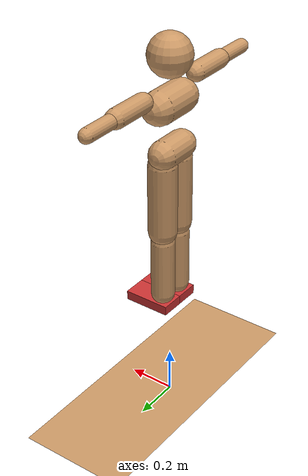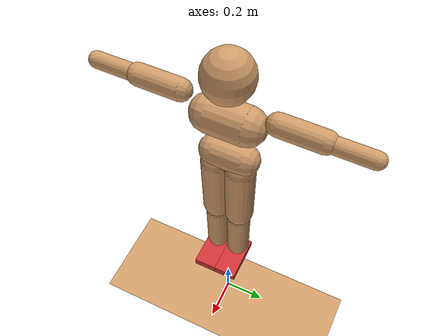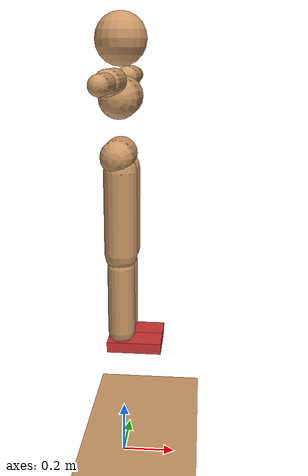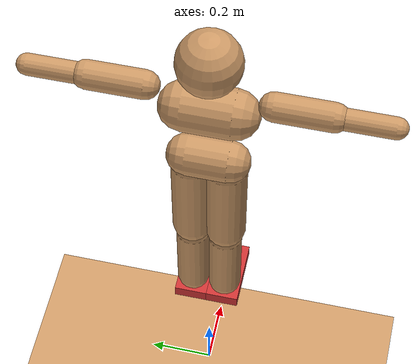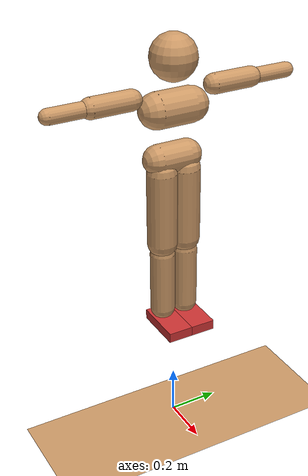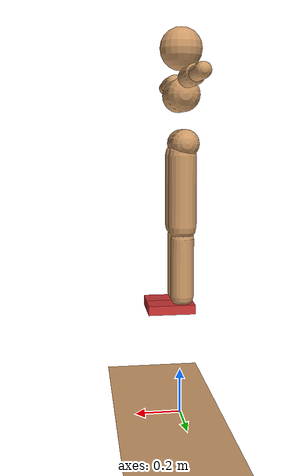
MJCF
<!--
Quark Humanoid v1: A Biomechanically-Inspired Model

This model is a simplified representation of the human body, designed for
learning locomotion and basic interaction in a MuJoCo simulation.
-->
<mujoco model="humanoid_v1">
  <compiler angle="degree" coordinate="local" inertiafromgeom="true"/>

  <option integrator="RK4" timestep="0.01"/>
  <size nconmax="2000" njmax="5000" />

  <default>
    <joint armature="1" damping="1" limited="true"/>
    <geom conaffinity="0" condim="3" density="1000" friction="1 0.5 0.5" margin="0.001" rgba="0.8 0.6 0.4 1"/>
  </default>

  <asset>
    <texture type="skybox" builtin="gradient" rgb1="0.4 0.6 0.8" rgb2="0 0 0" width="32" height="32"/>
    <texture name="texplane" type="2d" builtin="checker" rgb1=".2 .3 .4" rgb2=".1 0.15 0.2" width="512" height="512"/>
    <material name="MatPlane" reflectance="0.5" texture="texplane" texrepeat="1 1" texuniform="true"/>
  </asset>

  <worldbody>
    <!-- Arena Floor -->
    <geom name="floor" pos="0 0 0" size="5 5 0.1" type="plane" conaffinity="1" condim="3" material="MatPlane"/>
    <light diffuse=".5 .5 .5" pos="0 0 5" dir="0 0 -1"/>

    <!-- Humanoid Root -->
    <body name="torso" pos="0 0 1.4">
      <joint type="free" limited="false"/>
      <geom name="torso_geom" type="capsule" fromto="0 -0.07 0 0 0.07 0" size="0.07" />
      <geom name="waist_geom" type="capsule" fromto="-0.01 -0.06 -0.2 -0.01 0.06 -0.2" size="0.06" />

      <!-- Head -->
      <body name="head" pos="0 0 0.19">
        <geom name="head_geom" type="sphere" size="0.09" />
        <joint name="neck_y" type="hinge" pos="0 0 0.04" axis="0 1 0" range="-45 45"/>
        <joint name="neck_x" type="hinge" pos="0 0 0.04" axis="1 0 0" range="-45 45"/>
      </body>

      <!-- Right Arm -->
      <body name="right_upper_arm" pos="0 -0.17 0.06">
        <joint name="right_shoulder_x" type="hinge" pos="0 0 0" axis="1 0 0" range="-85 60"/>
        <joint name="right_shoulder_y" type="hinge" pos="0 0 0" axis="0 1 0" range="-85 60"/>
        <geom name="ru_arm_geom" type="capsule" fromto="0 0 0 0 -0.16 0" size="0.04" />
        <body name="right_lower_arm" pos="0 -0.18 0">
          <joint name="right_elbow" type="hinge" pos="0 0.02 0" axis="0 1 0" range="-120 0"/>
          <geom name="rl_arm_geom" type="capsule" fromto="0 0 0 0 -0.14 0" size="0.03" />
        </body>
      </body>

      <!-- Left Arm -->
      <body name="left_upper_arm" pos="0 0.17 0.06">
        <joint name="left_shoulder_x" type="hinge" pos="0 0 0" axis="1 0 0" range="-60 85"/>
        <joint name="left_shoulder_y" type="hinge" pos="0 0 0" axis="0 1 0" range="-60 85"/>
        <geom name="lu_arm_geom" type="capsule" fromto="0 0 0 0 0.16 0" size="0.04" />
        <body name="left_lower_arm" pos="0 0.18 0">
          <joint name="left_elbow" type="hinge" pos="0 -0.02 0" axis="0 1 0" range="-120 0"/>
          <geom name="ll_arm_geom" type="capsule" fromto="0 0 0 0 0.14 0" size="0.03" />
        </body>
      </body>

      <!-- Right Leg -->
      <body name="right_thigh" pos="0 -0.05 -0.25">
        <joint name="right_hip_x" type="hinge" pos="0 0 0" axis="1 0 0" range="-80 20"/>
        <joint name="right_hip_y" type="hinge" pos="0 0 0" axis="0 1 0" range="-45 45"/>
        <geom name="r_thigh_geom" type="capsule" fromto="0 0 0 0 0 -0.3" size="0.06" />
        <body name="right_shin" pos="0 0 -0.35">
          <joint name="right_knee" type="hinge" pos="0 0 0.02" axis="0 -1 0" range="0 150"/>
          <geom name="r_shin_geom" type="capsule" fromto="0 0 0 0 0 -0.25" size="0.05" />
          <!-- Right Foot -->
          <body name="right_foot" pos="0 0 -0.275">
            <joint name="right_ankle_y" type="hinge" pos="0 0 0.025" axis="0 1 0" range="-45 45"/>
            <joint name="right_ankle_x" type="hinge" pos="0 0 0.025" axis="1 0 0" range="-30 30"/>
            <geom name="r_foot_geom" type="box" pos="0.05 0 -0.025" size="0.1 0.05 0.02" rgba="0.8 0.2 0.2 1"/>
          </body>
        </body>
      </body>

      <!-- Left Leg -->
      <body name="left_thigh" pos="0 0.05 -0.25">
        <joint name="left_hip_x" type="hinge" pos="0 0 0" axis="1 0 0" range="-80 20"/>
        <joint name="left_hip_y" type="hinge" pos="0 0 0" axis="0 1 0" range="-45 45"/>
        <geom name="l_thigh_geom" type="capsule" fromto="0 0 0 0 0 -0.3" size="0.06" />
        <body name="left_shin" pos="0 0 -0.35">
          <joint name="left_knee" type="hinge" pos="0 0 0.02" axis="0 -1 0" range="0 150"/>
          <geom name="l_shin_geom" type="capsule" fromto="0 0 0 0 0 -0.25" size="0.05" />
          <!-- Left Foot -->
          <body name="left_foot" pos="0 0 -0.275">
            <joint name="left_ankle_y" type="hinge" pos="0 0 0.025" axis="0 1 0" range="-45 45"/>
            <joint name="left_ankle_x" type="hinge" pos="0 0 0.025" axis="1 0 0" range="-30 30"/>
            <geom name="l_foot_geom" type="box" pos="0.05 0 -0.025" size="0.1 0.05 0.02" rgba="0.8 0.2 0.2 1"/>
          </body>
        </body>
      </body>

    </body>
  </worldbody>

  <actuator>
    <!-- Neck -->
    <motor joint="neck_y" name="m_neck_y" gear="10" ctrllimited="true" ctrlrange="-45 45"/>
    <motor joint="neck_x" name="m_neck_x" gear="10" ctrllimited="true" ctrlrange="-45 45"/>
    <!-- Shoulders -->
    <motor joint="right_shoulder_x" name="m_rs_x" gear="100" ctrllimited="true" ctrlrange="-85 60"/>
    <motor joint="right_shoulder_y" name="m_rs_y" gear="100" ctrllimited="true" ctrlrange="-85 60"/>
    <motor joint="left_shoulder_x" name="m_ls_x" gear="100" ctrllimited="true" ctrlrange="-60 85"/>
    <motor joint="left_shoulder_y" name="m_ls_y" gear="100" ctrllimited="true" ctrlrange="-60 85"/>
    <!-- Elbows -->
    <motor joint="right_elbow" name="m_re" gear="50" ctrllimited="true" ctrlrange="-120 0"/>
    <motor joint="left_elbow" name="m_le" gear="50" ctrllimited="true" ctrlrange="-120 0"/>
    <!-- Hips -->
    <motor joint="right_hip_x" name="m_rh_x" gear="150" ctrllimited="true" ctrlrange="-80 20"/>
    <motor joint="right_hip_y" name="m_rh_y" gear="150" ctrllimited="true" ctrlrange="-45 45"/>
    <motor joint="left_hip_x" name="m_lh_x" gear="150" ctrllimited="true" ctrlrange="-80 20"/>
    <motor joint="left_hip_y" name="m_lh_y" gear="150" ctrllimited="true" ctrlrange="-45 45"/>
    <!-- Knees -->
    <motor joint="right_knee" name="m_rk" gear="100" ctrllimited="true" ctrlrange="0 150"/>
    <motor joint="left_knee" name="m_lk" gear="100" ctrllimited="true" ctrlrange="0 150"/>
    <!-- Ankles -->
    <motor joint="right_ankle_y" name="m_ra_y" gear="30" ctrllimited="true" ctrlrange="-45 45"/>
    <motor joint="right_ankle_x" name="m_ra_x" gear="30" ctrllimited="true" ctrlrange="-30 30"/>
    <motor joint="left_ankle_y" name="m_la_y" gear="30" ctrllimited="true" ctrlrange="-45 45"/>
    <motor joint="left_ankle_x" name="m_la_x" gear="30" ctrllimited="true" ctrlrange="-30 30"/>
  </actuator>

</mujoco>
